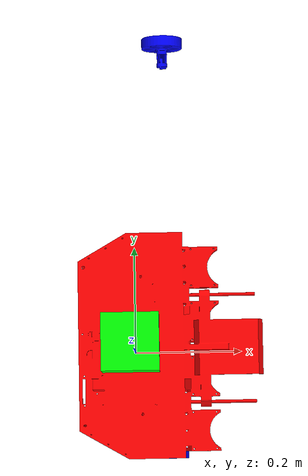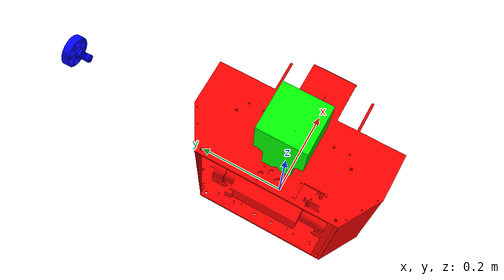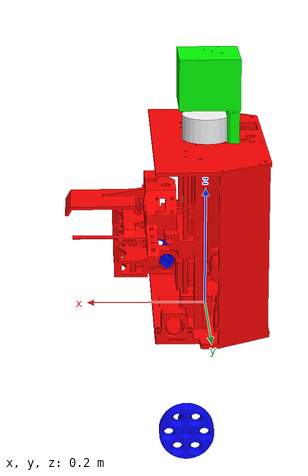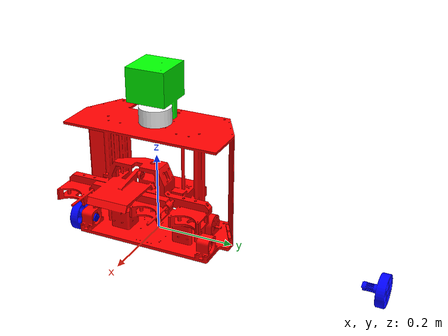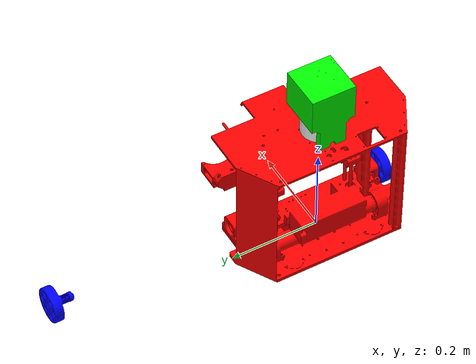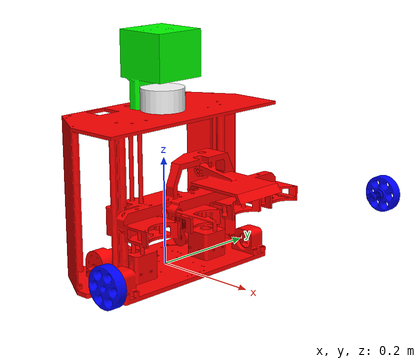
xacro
<?xml version="1.0" encoding="utf-8"?>
<robot xmlns:xacro="http://www.ros.org/wiki/xacro">
     <xacro:include filename="structure.xacro" />
     <xacro:include filename="sensors.xacro" />

     <link name="base_footprint" />
     <joint name="base_to_footprint" type="fixed">
          <parent link="base_footprint" />
          <child link="base_link" />
          <origin xyz="0 0 0" rpy="0 0 0" />
     </joint>

     <xacro:base_m
          name="base_link"
          mass="5"
          filename="package://description/meshes/base_link.STL">
          <origin
               xyz="0.016054 -0.0031971 0.10841"
               rpy="0 0 0"
          />
          <inertia
          ixx="0.019114"
          ixy="0.00015199"
          ixz="6.8537E-05"
          iyy="0.0061796"
          iyz="-9.0111E-05"
          izz="0.019044" />
     </xacro:base_m>
     <xacro:wheel_link
          name_link="right_wheel"
          filename="package://description/meshes/right_wheel.STL"
          mass="0.08">
          <origin
               xyz="-6.245E-17 -2.8449E-16 0.013347"
               rpy="0 0 0"
          />
          <inertia
               ixx="3.6651E-05"
               ixy="9.6988E-21"
               ixz="-7.7529E-22"
               iyy="3.6651E-05"
               iyz="-1.1318E-16"
               izz="5.4175E-05"
          />
     </xacro:wheel_link>
     <xacro:wheel_joint
          name="rightwheel"
          name_link="right_wheel">
          <origin
               xyz="0.058997 -0.2 0.021"
               rpy="-1.5708 0 0"
          />
     </xacro:wheel_joint>
     <xacro:wheel_link name_link="left_wheel" filename="package://description/meshes/left_wheel.STL"
          mass="0.08">
          <origin
               xyz="4.5103E-17 2.0817E-17 -0.013347"
               rpy="0 0 0"
          />
          <inertia
               ixx="3.6634E-05"
               ixy="1.2292E-20"
               ixz="-5.2555E-20"
               iyy="3.6634E-05"
               iyz="-3.185E-20"
               izz="5.4175E-05"
          />
     </xacro:wheel_link>
     <xacro:wheel_joint
          name="leftwheel"
          name_link="left_wheel">
          <origin
               xyz="0.058997 0.2 0.021"
               rpy="-1.5708 0 0"
          />
     </xacro:wheel_joint>
     <xacro:imu />
     <xacro:lazer
          xyz="0 0 0.308"
          rpy = "0 0 0"
          length="0.041"
          radius="0.040"
          mass="0.25" >
     </xacro:lazer>
     <xacro:aruco_link_m
          filename="package://description/meshes/aruco.STL"
          mass="0.4">
          <origin
               xyz="-0.0077972 5.7506E-10 -0.038759"
               rpy="0 0 0" />
          <inertia
               ixx="0.00060095"
               ixy="1.109E-09"
               ixz="-0.00011373"
               iyy="0.00065092"
               iyz="-2.1703E-12"
               izz="0.00071676" />
     </xacro:aruco_link_m>
     <xacro:aruco_joint_m>
          <origin
          xyz="-0.003304 0 0.431"
          rpy="0 0 0" />
     </xacro:aruco_joint_m>
</robot>

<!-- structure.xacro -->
<robot xmlns:xacro="http://www.ros.org/wiki/xacro">
    <!-- Specify some colours -->
    <material name="base_material">
        <color
            rgba="1 0 0 1" />
    </material>

    <material name="wheel_material">
        <color
            rgba="0 0 1 1" />
    </material>

    <material name="aruco_material">
        <color
            rgba="0 1 0 1" />
    </material>
    <!-- Macros for base_link-->
    <xacro:macro name="base_m" params="name mass filename *origin *inertia">
        <link name="${name}">
            <visual>
                <origin
                    xyz="0 0 0"
                    rpy="0 0 0"
                />
                <geometry>
                    <mesh filename="${filename}" />
                </geometry>
                <material name="base_material" />
            </visual>
            <collision>
                <origin
                    xyz="0 0 0"
                    rpy="0 0 0"
                />
                <geometry>
                    <mesh filename="${filename}" />
                </geometry>
            </collision>
            <inertial>
                <xacro:insert_block name="origin" />
                <mass value="${mass}" />
                <xacro:insert_block name="inertia" />
            </inertial>
        </link>
    </xacro:macro>
    <!-- Macros for wheels links & joints-->
    <xacro:macro name="wheel_link" params="name_link filename mass *origin *inertia">
        <link name="${name_link}">
            <visual>
                <origin
                    xyz="0 0 0"
                    rpy="0 0 0"
                />
                <geometry>
                    <mesh filename="${filename}" />
                </geometry>
                <material name="wheel_material" />
            </visual>
            <collision>
                <origin
                    xyz="0 0 0"
                    rpy="0 0 0"
                />
                <geometry>
                    <mesh filename="${filename}" />
                </geometry>
            </collision>
            <inertial>
                <xacro:insert_block name="origin" />
                <mass value="${mass}" />
                <xacro:insert_block name="inertia" />
            </inertial>
        </link>
    </xacro:macro>

    <xacro:macro name="wheel_joint" params="name name_link *origin">
        <joint name="${name}" type="continuous">
            <xacro:insert_block name="origin" />
            <parent link="base_link" />
            <child link="${name_link}" />
            <axis xyz="0 0 1" />
            <limit
                effort="0"
                velocity="10"
            />
            <dynamics
                damping="0"
                friction="0"
            />
        </joint>
    </xacro:macro>
    <!-- Macros for aruco link-->
    <xacro:macro name="aruco_link_m" params="filename mass *origin *inertia">
        <link name="aruco_link">
            <visual>
                <origin xyz="0 0 0" rpy="0 0 0" />
                <geometry>
                    <mesh filename="${filename}" />
                </geometry>
                <material name="aruco_material" />
            </visual>
            <collision>
                <origin xyz="0 0 0" rpy="0 0 0" />
                <geometry>
                    <mesh filename="${filename}" />
                </geometry>
            </collision>
            <inertial>
                <xacro:insert_block name="origin" />
                <mass value="${mass}" />
                <xacro:insert_block name="inertia" />
            </inertial>
        </link>
    </xacro:macro>
    <xacro:macro name="aruco_joint_m" params="*origin">
        <joint name="aruco_to_base" type="fixed">
            <xacro:insert_block name="origin" />
            <parent link="base_link" />
            <child link="aruco_link" />
            <axis xyz="0 0 0" />
        </joint>
    </xacro:macro>
</robot>

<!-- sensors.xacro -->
<robot xmlns:xacro="http://ros.org/wiki/xacro">
   <material name="lazer_material">
      <color
        rgba="1 1 1 1" />
      </material>
  <xacro:macro name="imu">
    <link name="base_imu_link"/>

    <joint name="imu_to_base_link" type="fixed">
      <parent link="base_link"/>
      <child link="base_imu_link"/>
      <origin xyz="0.065 0 0" rpy="0 3.14 3.14"/>
    </joint>
  </xacro:macro>

  <xacro:macro name="lazer" params="xyz rpy length radius mass">
  <link name="lidar_link">
    <visual>
      <origin xyz="0 0 0" rpy="0 0 0"/>
      <geometry>
        <cylinder length="${length}" radius="${radius}"/>
      </geometry>
      <material name="lazer_material"/>
    </visual>
    <collision>
      <origin xyz="${xyz}" rpy="${rpy}"/>
      <geometry>
        <cylinder length="${length}" radius="${radius}"/>
      </geometry>
    </collision>
    <inertial>
      <!-- Provide a default origin for inertial properties -->
      <origin xyz="${xyz}" rpy="${rpy}"/>
      <mass value="${mass}"/>
      <inertia ixx="${(1/12) * mass * (3*(radius*radius) + (length*length))}"
               ixy="0.0" ixz="0.0"
               iyy="${(1/12) * mass * (3*(radius*radius) + (length*length))}"
               iyz="0.0"
               izz="${(1/2) * mass * (radius*radius)}"/>
    </inertial>
  </link>

  <joint name="lidar_to_base_link" type="fixed">
      <parent link="base_link"/>
      <child link="lidar_link"/>
      <origin xyz="${xyz}" rpy="${rpy}"/>
  </joint>
</xacro:macro>
</robot>
